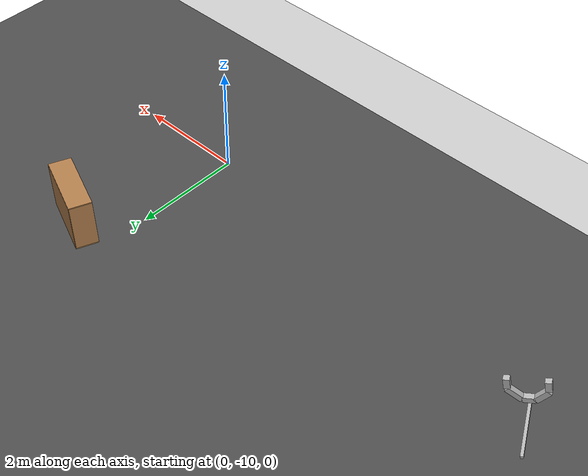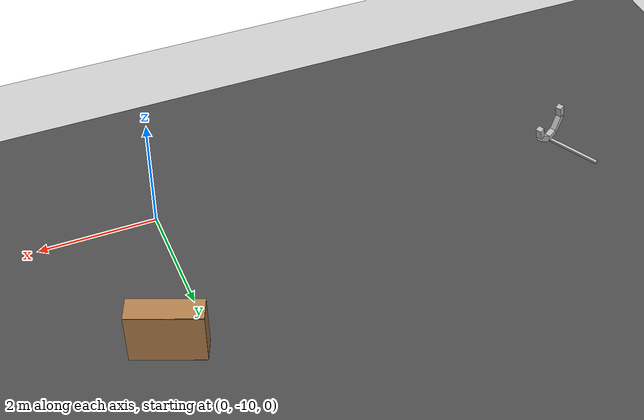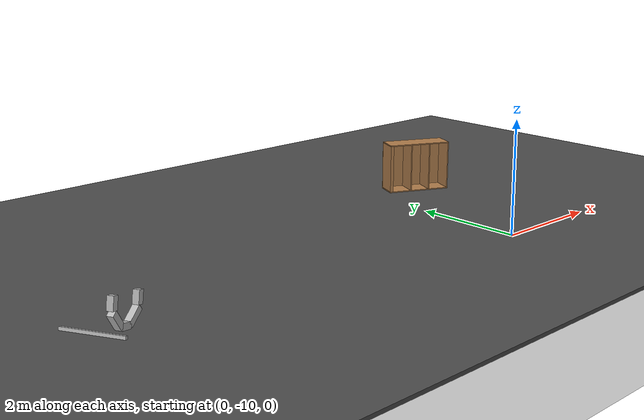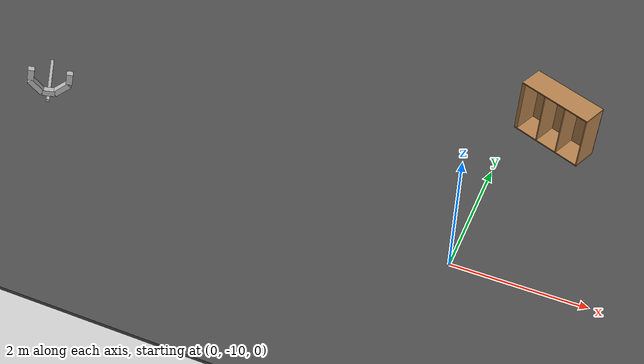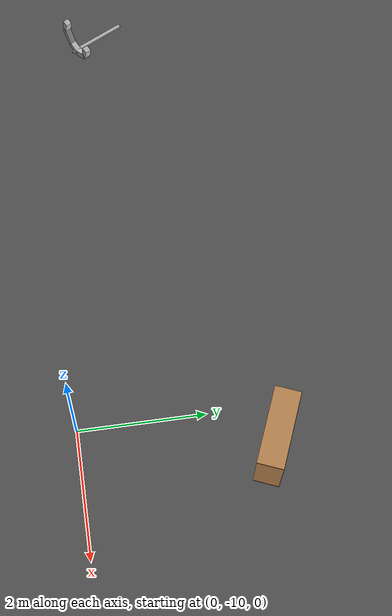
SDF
<sdf version="1.6">
 <world name="default">
  <model name="ground_plane">
   <static>1</static>
   <link name="link">
    <collision name="collision">
     <geometry><plane><normal>0 0 1</normal><size>100 100</size></plane></geometry>
     <surface>
      <contact><collide_bitmask>65535</collide_bitmask></contact>
      <friction><ode><mu>100</mu><mu2>50</mu2></ode></friction>
     </surface>
    </collision>
    <visual name="visual">
     <cast_shadows>0</cast_shadows>
     <geometry><plane><normal>0 0 1</normal><size>100 100</size></plane></geometry>
     <material>
      <script><uri>file://media/materials/scripts/gazebo.material</uri><name>Gazebo/Grey</name></script>
     </material>
    </visual>
   </link>
  </model>
  <model name="bookshelf">
   <static>1</static>
   <link name="bookshelf::link">
    <inertial><mass>1</mass></inertial>
    <collision name="back">
     <pose>0 0.005 0.6 0 -0 0</pose>
     <geometry><box><size>0.9 0.01 1.2</size></box></geometry>
    </collision>
    <visual name="visual1">
     <pose>0 0.005 0.6 0 -0 0</pose>
     <geometry><box><size>0.9 0.01 1.2</size></box></geometry>
     <material>
      <script><uri>file://media/materials/scripts/gazebo.material</uri><name>Gazebo/Wood</name></script>
     </material>
    </visual>
    <collision name="left_side">
     <pose>0.45 -0.195 0.6 0 -0 0</pose>
     <geometry><box><size>0.02 0.4 1.2</size></box></geometry>
    </collision>
    <visual name="visual2">
     <pose>0.45 -0.195 0.6 0 -0 0</pose>
     <geometry><box><size>0.02 0.4 1.2</size></box></geometry>
     <material>
      <script><uri>file://media/materials/scripts/gazebo.material</uri><name>Gazebo/Wood</name></script>
     </material>
    </visual>
    <collision name="right_side">
     <pose>-0.45 -0.195 0.6 0 -0 0</pose>
     <geometry><box><size>0.02 0.4 1.2</size></box></geometry>
    </collision>
    <visual name="visual3">
     <pose>-0.45 -0.195 0.6 0 -0 0</pose>
     <geometry><box><size>0.02 0.4 1.2</size></box></geometry>
     <material>
      <script><uri>file://media/materials/scripts/gazebo.material</uri><name>Gazebo/Wood</name></script>
     </material>
    </visual>
    <collision name="bottom">
     <pose>0 -0.195 0.03 0 -0 0</pose>
     <geometry><box><size>0.88 0.4 0.06</size></box></geometry>
    </collision>
    <visual name="visual4">
     <pose>0 -0.195 0.03 0 -0 0</pose>
     <geometry><box><size>0.88 0.4 0.06</size></box></geometry>
     <material>
      <script><uri>file://media/materials/scripts/gazebo.material</uri><name>Gazebo/Wood</name></script>
     </material>
    </visual>
    <collision name="top">
     <pose>0 -0.195 1.19 0 -0 0</pose>
     <geometry><box><size>0.88 0.4 0.02</size></box></geometry>
    </collision>
    <visual name="visual5">
     <pose>0 -0.195 1.19 0 -0 0</pose>
     <geometry><box><size>0.88 0.4 0.02</size></box></geometry>
     <material>
      <script><uri>file://media/materials/scripts/gazebo.material</uri><name>Gazebo/Wood</name></script>
     </material>
    </visual>
    <collision name="low_shelf">
     <pose>0 -0.195 0.43 0 -0 0</pose>
     <geometry><box><size>0.88 0.4 0.02</size></box></geometry>
    </collision>
    <visual name="visual6">
     <pose>0 -0.195 0.43 0 -0 0</pose>
     <geometry><box><size>0.88 0.4 0.02</size></box></geometry>
     <material>
      <script><uri>file://media/materials/scripts/gazebo.material</uri><name>Gazebo/Wood</name></script>
     </material>
    </visual>
    <collision name="high_shelf">
     <pose>0 -0.195 0.8 0 -0 0</pose>
     <geometry><box><size>0.88 0.4 0.02</size></box></geometry>
    </collision>
    <visual name="visual7">
     <pose>0 -0.195 0.8 0 -0 0</pose>
     <geometry><box><size>0.88 0.4 0.02</size></box></geometry>
     <material>
      <script><uri>file://media/materials/scripts/gazebo.material</uri><name>Gazebo/Wood</name></script>
     </material>
    </visual>
    <kinematic>1</kinematic>
   </link>
   <pose>0.214064 -6.6606 0.597977 -2.74746 1.55184 -3.14159</pose>
  </model>
  <model name="simple_gripper">
   <link name="riser">
    <pose>-0.15 0 0.5 0 -0 0</pose>
    <inertial>
     <mass>10</mass>
     <inertia><ixx>1</ixx><ixy>0</ixy><ixz>0</ixz><iyy>1</iyy><iyz>0</iyz><izz>1</izz></inertia>
    </inertial>
    <collision name="collision">
     <geometry><box><size>0.05 0.05 1</size></box></geometry>
     <surface><contact><ode><max_vel>0</max_vel></ode></contact></surface>
    </collision>
    <visual name="visual"><geometry><box><size>0.05 0.05 1</size></box></geometry></visual>
   </link>
   <link name="palm">
    <pose>0 0 0.05 0 -0 0</pose>
    <inertial>
     <mass>0.5</mass>
     <inertia><ixx>1</ixx><ixy>0</ixy><ixz>0</ixz><iyy>1</iyy><iyz>0</iyz><izz>1</izz></inertia>
    </inertial>
    <collision name="collision">
     <geometry><box><size>0.1 0.2 0.1</size></box></geometry>
     <surface><contact><ode><max_vel>0</max_vel></ode></contact></surface>
    </collision>
    <visual name="visual"><geometry><box><size>0.1 0.2 0.1</size></box></geometry></visual>
   </link>
   <link name="left_finger">
    <pose>0.1 0.2 0.05 0 0 -0.78539</pose>
    <inertial>
     <mass>0.1</mass>
     <inertia><ixx>1</ixx><ixy>0</ixy><ixz>0</ixz><iyy>1</iyy><iyz>0</iyz><izz>1</izz></inertia>
    </inertial>
    <collision name="collision">
     <geometry><box><size>0.1 0.3 0.1</size></box></geometry>
     <surface>
      <friction><ode><mu>0.1</mu><mu2>0</mu2></ode></friction>
      <contact><ode><max_vel>0</max_vel></ode></contact>
     </surface>
    </collision>
    <visual name="visual"><geometry><box><size>0.1 0.3 0.1</size></box></geometry></visual>
   </link>
   <link name="left_finger_tip">
    <pose>0.336 0.3 0.05 0 -0 1.5707</pose>
    <inertial>
     <mass>0.5</mass>
     <inertia><ixx>1</ixx><ixy>0</ixy><ixz>0</ixz><iyy>1</iyy><iyz>0</iyz><izz>1</izz></inertia>
    </inertial>
    <collision name="collision">
     <geometry><box><size>0.1 0.2 0.1</size></box></geometry>
     <surface>
      <friction><ode><mu>0.1</mu><mu2>0</mu2></ode></friction>
      <contact><ode><max_vel>0</max_vel></ode></contact>
     </surface>
    </collision>
    <visual name="visual"><geometry><box><size>0.1 0.2 0.1</size></box></geometry></visual>
   </link>
   <link name="right_finger">
    <pose>0.1 -0.2 0.05 0 -0 0.78539</pose>
    <inertial>
     <mass>0.1</mass>
     <inertia><ixx>1</ixx><ixy>0</ixy><ixz>0</ixz><iyy>1</iyy><iyz>0</iyz><izz>1</izz></inertia>
    </inertial>
    <collision name="collision">
     <geometry><box><size>0.1 0.3 0.1</size></box></geometry>
     <surface>
      <friction><ode><mu>0.1</mu><mu2>0</mu2></ode></friction>
      <contact><ode><max_vel>0</max_vel></ode></contact>
     </surface>
    </collision>
    <visual name="visual"><geometry><box><size>0.1 0.3 0.1</size></box></geometry></visual>
   </link>
   <link name="right_finger_tip">
    <pose>0.336 -0.3 0.05 0 -0 1.5707</pose>
    <inertial>
     <mass>0.1</mass>
     <inertia><ixx>1</ixx><ixy>0</ixy><ixz>0</ixz><iyy>1</iyy><iyz>0</iyz><izz>1</izz></inertia>
    </inertial>
    <collision name="collision">
     <geometry><box><size>0.1 0.2 0.1</size></box></geometry>
     <surface>
      <friction><ode><mu>0.1</mu><mu2>0</mu2></ode></friction>
      <contact><ode><max_vel>0</max_vel></ode></contact>
     </surface>
    </collision>
    <visual name="visual"><geometry><box><size>0.1 0.2 0.1</size></box></geometry></visual>
   </link>
   <joint name="palm_left_finger" type="revolute">
    <pose>0 -0.15 0 0 -0 0</pose>
    <child>left_finger</child>
    <parent>palm</parent>
    <axis>
     <limit><lower>-0.8</lower><upper>0.8</upper></limit>
     <xyz>0 0 1</xyz>
     <use_parent_model_frame>1</use_parent_model_frame>
     <dynamics><spring_reference>0</spring_reference><spring_stiffness>0</spring_stiffness></dynamics>
    </axis>
   </joint>
   <joint name="left_finger_tip" type="revolute">
    <pose>0 0.1 0 0 -0 0</pose>
    <child>left_finger_tip</child>
    <parent>left_finger</parent>
    <axis>
     <limit><lower>-0.8</lower><upper>0.8</upper></limit>
     <xyz>0 0 1</xyz>
     <use_parent_model_frame>1</use_parent_model_frame>
     <dynamics><spring_reference>0</spring_reference><spring_stiffness>0</spring_stiffness></dynamics>
    </axis>
   </joint>
   <joint name="palm_right_finger" type="revolute">
    <pose>0 0.15 0 0 -0 0</pose>
    <child>right_finger</child>
    <parent>palm</parent>
    <axis>
     <limit><lower>-0.8</lower><upper>0.8</upper></limit>
     <xyz>0 0 1</xyz>
     <use_parent_model_frame>1</use_parent_model_frame>
     <dynamics><spring_reference>0</spring_reference><spring_stiffness>0</spring_stiffness></dynamics>
    </axis>
   </joint>
   <joint name="right_finger_tip" type="revolute">
    <pose>0 0.1 0 0 -0 0</pose>
    <child>right_finger_tip</child>
    <parent>right_finger</parent>
    <axis>
     <limit><lower>-0.8</lower><upper>0.8</upper></limit>
     <xyz>0 0 1</xyz>
     <use_parent_model_frame>1</use_parent_model_frame>
     <dynamics><spring_reference>0</spring_reference><spring_stiffness>0</spring_stiffness></dynamics>
    </axis>
   </joint>
   <joint name="palm_riser" type="prismatic">
    <child>palm</child>
    <parent>riser</parent>
    <axis>
     <limit><lower>0</lower><upper>0.9</upper></limit>
     <xyz>0 0 1</xyz>
     <use_parent_model_frame>1</use_parent_model_frame>
     <dynamics><spring_reference>0</spring_reference><spring_stiffness>0</spring_stiffness></dynamics>
    </axis>
   </joint>
   <gripper name="simple_gripper">
    <grasp_check>
     <detach_steps>40</detach_steps>
     <attach_steps>20</attach_steps>
     <min_contact_count>2</min_contact_count>
    </grasp_check>
    <gripper_link>right_finger</gripper_link>
    <gripper_link>right_finger_tip</gripper_link>
    <gripper_link>left_finger</gripper_link>
    <gripper_link>left_finger_tip</gripper_link>
    <palm_link>palm</palm_link>
   </gripper>
   <pose>-6.98877 -9.32476 0.226163 -1.5708 -1.34555 0.482802</pose>
  </model>
  <model name="asphalt_plane">
   <static>1</static>
   <link name="link">
    <collision name="collision"><geometry><box><size>24.0868 24.0603 0.1</size></box></geometry></collision>
    <visual name="visual">
     <cast_shadows>0</cast_shadows>
     <geometry><box><size>24.0868 24.0603 0.1</size></box></geometry>
     <material>
      <script>
       <uri>model://asphalt_plane/materials/scripts</uri>
       <uri>model://asphalt_plane/materials/textures</uri>
       <name>vrc/asphalt</name>
      </script>
     </material>
    </visual>
   </link>
   <pose>1.39389 -0.870184 0 0 -0 0</pose>
  </model>
 </world>
</sdf>
